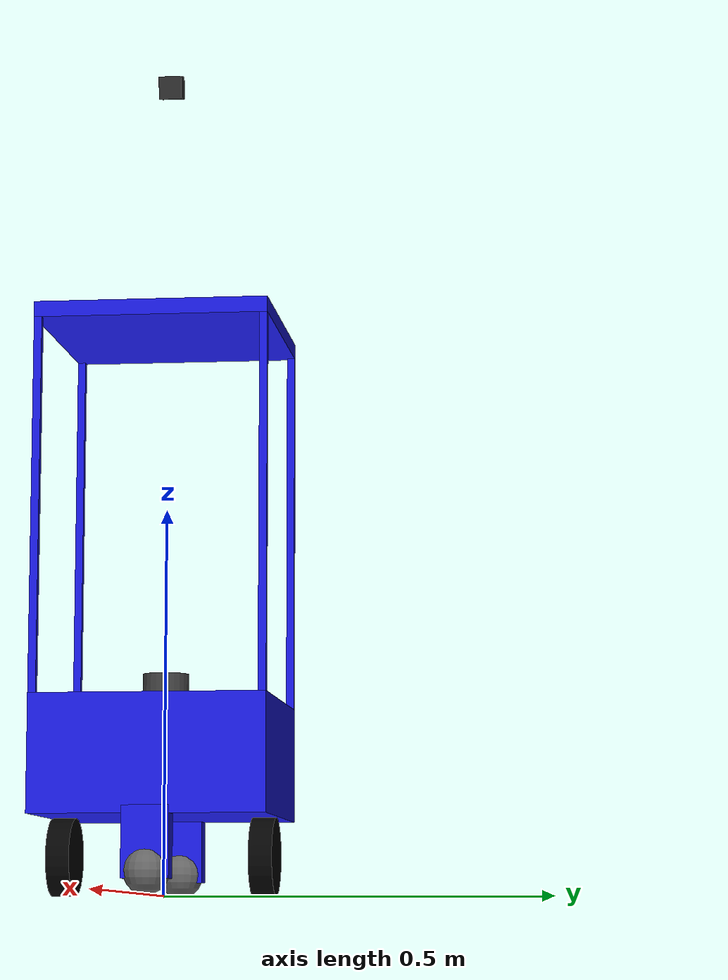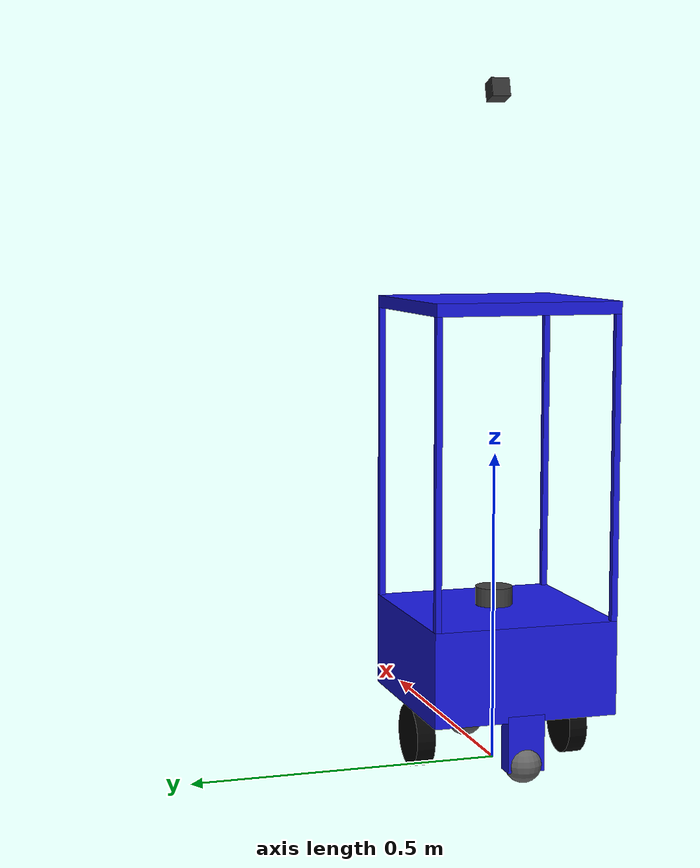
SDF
<?xml version="1.0" ?>
<sdf version="1.9">
  <model name="robot_rgbd">
    <static>false</static>

    <link name="chassis">
      <pose>0 0 0.375 0 0 0</pose>

      <inertial>
        <pose>0 0 -0.30 0 0 0</pose>
        <mass>60.0</mass>
        <inertia>
          <ixx>3.0</ixx>
          <iyy>3.0</iyy>
          <izz>2.0</izz>
          <ixy>0</ixy>
          <ixz>0</ixz>
          <iyz>0</iyz>
        </inertia>
      </inertial>

      <collision name="base_collision">
        <pose>0 0 -0.20 0 0 0</pose>
        <geometry>
          <box>
            <size>0.30 0.30 0.18</size>
          </box>
        </geometry>
        <surface>
          <contact>
            <collide_bitmask>0x01</collide_bitmask>
          </contact>
        </surface>
      </collision>

      <collision name="full_robot_collision">
        <pose>0 0 0.10 0 0 0</pose>
        <geometry>
          <box>
            <size>0.30 0.30 0.65</size>
          </box>
        </geometry>
        <surface>
          <contact>
            <collide_bitmask>0x01</collide_bitmask>
          </contact>
        </surface>
      </collision>

      <visual name="base_block_visual">
        <pose>0 0 -0.20 0 0 0</pose>
        <geometry>
          <box>
            <size>0.30 0.30 0.15</size>
          </box>
        </geometry>
        <material>
          <ambient>0.1 0.1 0.9 1</ambient>
          <diffuse>0.1 0.1 0.9 1</diffuse>
        </material>
      </visual>

      <visual name="top_plate_visual">
        <pose>0 0 0.365 0 0 0</pose>
        <geometry>
          <box>
            <size>0.30 0.30 0.02</size>
          </box>
        </geometry>
        <material>
          <ambient>0.1 0.1 0.9 1</ambient>
          <diffuse>0.1 0.1 0.9 1</diffuse>
        </material>
      </visual>

      <visual name="pillar_fl">
        <pose> 0.145  0.145 0.115 0 0 0</pose>
        <geometry><box><size>0.01 0.01 0.48</size></box></geometry>
        <material><ambient>0.1 0.1 0.9 1</ambient><diffuse>0.1 0.1 0.9 1</diffuse></material>
      </visual>
      <visual name="pillar_fr">
        <pose> 0.145 -0.145 0.115 0 0 0</pose>
        <geometry><box><size>0.01 0.01 0.48</size></box></geometry>
        <material><ambient>0.1 0.1 0.9 1</ambient><diffuse>0.1 0.1 0.9 1</diffuse></material>
      </visual>
      <visual name="pillar_rl">
        <pose>-0.145  0.145 0.115 0 0 0</pose>
        <geometry><box><size>0.01 0.01 0.48</size></box></geometry>
        <material><ambient>0.1 0.1 0.9 1</ambient><diffuse>0.1 0.1 0.9 1</diffuse></material>
      </visual>
      <visual name="pillar_rr">
        <pose>-0.145 -0.145 0.115 0 0 0</pose>
        <geometry><box><size>0.01 0.01 0.48</size></box></geometry>
        <material><ambient>0.1 0.1 0.9 1</ambient><diffuse>0.1 0.1 0.9 1</diffuse></material>
      </visual>

      <visual name="front_caster_mount_visual">
        <pose>0.135 0 -0.31 0 0 0</pose>
        <geometry>
          <box>
            <size>0.03 0.06 0.09</size>
          </box>
        </geometry>
        <material>
          <ambient>0.1 0.1 0.9 1</ambient>
          <diffuse>0.1 0.1 0.9 1</diffuse>
        </material>
      </visual>

      <visual name="rear_caster_mount_visual">
        <pose>-0.135 0 -0.31 0 0 0</pose>
        <geometry>
          <box>
            <size>0.03 0.06 0.09</size>
          </box>
        </geometry>
        <material>
          <ambient>0.1 0.1 0.9 1</ambient>
          <diffuse>0.1 0.1 0.9 1</diffuse>
        </material>
      </visual>
    </link>

    <link name="lidar_link">
      <pose relative_to="chassis">0 0 -0.125 0 0 0</pose>

      <visual name="lidar_visual">
        <pose>0 0 0.02 0 0 0</pose>
        <geometry><cylinder><radius>0.03</radius><length>0.03</length></cylinder></geometry>
        <material>
          <ambient>0.25 0.25 0.25 1</ambient>
          <diffuse>0.25 0.25 0.25 1</diffuse>
        </material>
      </visual>

      <sensor name="lidar" type="gpu_lidar">
        <always_on>true</always_on>
        <visualize>true</visualize>
        <update_rate>10</update_rate>
        <topic>/scan</topic>

        <ray>
          <scan>
            <horizontal>
              <samples>360</samples>
              <resolution>1</resolution>
              <min_angle>-3.14159</min_angle>
              <max_angle> 3.14159</max_angle>
            </horizontal>
          </scan>
          <range>
            <min>0.25</min>
            <max>8.0</max>
            <resolution>0.01</resolution>
          </range>
        </ray>
      </sensor>
    </link>

    <joint name="lidar_joint" type="fixed">
      <parent>chassis</parent>
      <child>lidar_link</child>
    </joint>

    <link name="camera_link">
      <pose relative_to="chassis">0 0 0.70 0 0.28 0</pose>
      <visual name="camera_visual">
        <geometry>
          <box><size>0.03 0.03 0.03</size></box>
        </geometry>
        <material>
          <ambient>0.2 0.2 0.2 1</ambient>
          <diffuse>0.2 0.2 0.2 1</diffuse>
        </material>
      </visual>

      <sensor name="rgbd_cam" type="rgbd_camera">
        <always_on>true</always_on>
        <update_rate>30</update_rate>
        <visualize>true</visualize>
        <topic>/camera</topic>

        <camera name="rgbd_camera">
          <camera_info_topic>/camera/camera_info</camera_info_topic>
          <optical_frame_id>camera_link</optical_frame_id>
          <horizontal_fov>1.5</horizontal_fov>
          <image>
            <width>640</width>
            <height>480</height>
            <format>R8G8B8</format>
          </image>
          <clip>
            <near>0.05</near>
            <far>20.0</far>
          </clip>
          <depth_camera>
            <clip>
              <near>0.05</near>
              <far>20.0</far>
            </clip>
          </depth_camera>
        </camera>
      </sensor>
    </link>

    <joint name="camera_joint" type="fixed">
      <parent>chassis</parent>
      <child>camera_link</child>
    </joint>

    <link name="left_wheel">
      <pose relative_to="chassis">0.0 0.13 -0.325 0 0 0</pose>

      <collision name="collision">
        <pose>0 0 0 1.5708 0 0</pose>
        <geometry><cylinder><radius>0.05</radius><length>0.03</length></cylinder></geometry>
        <surface>
          <contact>
            <collide_bitmask>0x02</collide_bitmask>
            <ode>
              <kp>80000</kp>
              <kd>5</kd>
            </ode>
          </contact>
          <friction>
            <ode>
              <mu>1.4</mu>
              <mu2>1.4</mu2>
              <slip1>0.0</slip1>
              <slip2>0.0</slip2>
            </ode>
          </friction>
        </surface>
      </collision>

      <visual name="visual">
        <pose>0 0 0 1.5708 0 0</pose>
        <geometry><cylinder><radius>0.05</radius><length>0.03</length></cylinder></geometry>
        <material><ambient>0.02 0.02 0.02 1</ambient><diffuse>0.02 0.02 0.02 1</diffuse></material>
      </visual>

      <inertial>
        <mass>0.3</mass>
        <inertia>
          <ixx>0.00021</ixx>
          <iyy>0.000375</iyy>
          <izz>0.00021</izz>
          <ixy>0</ixy>
          <ixz>0</ixz>
          <iyz>0</iyz>
        </inertia>
      </inertial>
    </link>

    <joint name="left_wheel_joint" type="revolute">
      <pose relative_to="chassis">0.0 0.13 -0.325 0 0 0</pose>
      <parent>chassis</parent>
      <child>left_wheel</child>
      <axis>
        <xyz>0 1 0</xyz>
        <dynamics>
          <damping>6.0</damping>
          <friction>2.0</friction>
        </dynamics>
      </axis>
    </joint>

    <link name="right_wheel">
      <pose relative_to="chassis">0.0 -0.13 -0.325 0 0 0</pose>

      <collision name="collision">
        <pose>0 0 0 1.5708 0 0</pose>
        <geometry><cylinder><radius>0.05</radius><length>0.03</length></cylinder></geometry>
        <surface>
          <contact>
            <collide_bitmask>0x02</collide_bitmask>
            <ode>
              <kp>80000</kp>
              <kd>5</kd>
            </ode>
          </contact>
          <friction>
            <ode>
              <mu>1.4</mu>
              <mu2>1.4</mu2>
              <slip1>0.0</slip1>
              <slip2>0.0</slip2>
            </ode>
          </friction>
        </surface>
      </collision>

      <visual name="visual">
        <pose>0 0 0 1.5708 0 0</pose>
        <geometry><cylinder><radius>0.05</radius><length>0.03</length></cylinder></geometry>
        <material><ambient>0.02 0.02 0.02 1</ambient><diffuse>0.02 0.02 0.02 1</diffuse></material>
      </visual>

      <inertial>
        <mass>0.3</mass>
        <inertia>
          <ixx>0.00021</ixx>
          <iyy>0.000375</iyy>
          <izz>0.00021</izz>
          <ixy>0</ixy>
          <ixz>0</ixz>
          <iyz>0</iyz>
        </inertia>
      </inertial>
    </link>

    <joint name="right_wheel_joint" type="revolute">
      <pose relative_to="chassis">0.0 -0.13 -0.325 0 0 0</pose>
      <parent>chassis</parent>
      <child>right_wheel</child>
      <axis>
        <xyz>0 1 0</xyz>
        <dynamics>
          <damping>6.0</damping>
          <friction>2.0</friction>
        </dynamics>
      </axis>
    </joint>

    <link name="front_caster">
      <pose relative_to="chassis">0.135 0 -0.345 0 0 0</pose>

      <collision name="collision">
        <geometry><sphere><radius>0.03</radius></sphere></geometry>
        <surface>
          <contact>
            <collide_bitmask>0x02</collide_bitmask>
            <ode>
              <kp>60000</kp>
              <kd>5</kd>
            </ode>
          </contact>
          <friction>
            <ode>
              <mu>0.05</mu>
              <mu2>0.05</mu2>
              <slip1>1.0</slip1>
              <slip2>1.0</slip2>
            </ode>
          </friction>
        </surface>
      </collision>

      <visual name="visual">
        <geometry><sphere><radius>0.03</radius></sphere></geometry>
        <material><ambient>0.4 0.4 0.4 1</ambient><diffuse>0.4 0.4 0.4 1</diffuse></material>
      </visual>

      <inertial>
        <mass>0.25</mass>
        <inertia>
          <ixx>0.00009</ixx>
          <iyy>0.00009</iyy>
          <izz>0.00009</izz>
          <ixy>0</ixy>
          <ixz>0</ixz>
          <iyz>0</iyz>
        </inertia>
      </inertial>
    </link>

    <joint name="front_caster_joint" type="fixed">
      <pose relative_to="chassis">0.135 0 -0.345 0 0 0</pose>
      <parent>chassis</parent>
      <child>front_caster</child>
    </joint>

    <link name="rear_caster">
      <pose relative_to="chassis">-0.135 0 -0.345 0 0 0</pose>

      <collision name="collision">
        <geometry><sphere><radius>0.03</radius></sphere></geometry>
        <surface>
          <contact>
            <collide_bitmask>0x02</collide_bitmask>
            <ode>
              <kp>60000</kp>
              <kd>5</kd>
            </ode>
          </contact>
          <friction>
            <ode>
              <mu>0.05</mu>
              <mu2>0.05</mu2>
              <slip1>1.0</slip1>
              <slip2>1.0</slip2>
            </ode>
          </friction>
        </surface>
      </collision>

      <visual name="visual">
        <geometry><sphere><radius>0.03</radius></sphere></geometry>
        <material><ambient>0.4 0.4 0.4 1</ambient><diffuse>0.4 0.4 0.4 1</diffuse></material>
      </visual>

      <inertial>
        <mass>0.25</mass>
        <inertia>
          <ixx>0.00009</ixx>
          <iyy>0.00009</iyy>
          <izz>0.00009</izz>
          <ixy>0</ixy>
          <ixz>0</ixz>
          <iyz>0</iyz>
        </inertia>
      </inertial>
    </link>

    <joint name="rear_caster_joint" type="fixed">
      <pose relative_to="chassis">-0.135 0 -0.345 0 0 0</pose>
      <parent>chassis</parent>
      <child>rear_caster</child>
    </joint>

    <plugin filename="gz-sim-diff-drive-system" name="gz::sim::systems::DiffDrive">
      <left_joint>left_wheel_joint</left_joint>
      <right_joint>right_wheel_joint</right_joint>

      <wheel_separation>0.26</wheel_separation>
      <wheel_radius>0.05</wheel_radius>

      <topic>/cmd_vel</topic>
      <odom_topic>/odom</odom_topic>
      <odom_publish_frequency>50</odom_publish_frequency>
    </plugin>

    <plugin filename="gz-sim-sensors-system" name="gz::sim::systems::Sensors"/>

    <plugin
        filename="gz-sim-pose-publisher-system"
        name="gz::sim::systems::PosePublisher">
      <publish_model_pose>true</publish_model_pose>
      <publish_link_pose>false</publish_link_pose>
      <publish_collision_pose>false</publish_collision_pose>
      <publish_visual_pose>false</publish_visual_pose>
      <publish_nested_model_pose>true</publish_nested_model_pose>
      <update_frequency>50</update_frequency>
    </plugin>
  </model>
</sdf>
